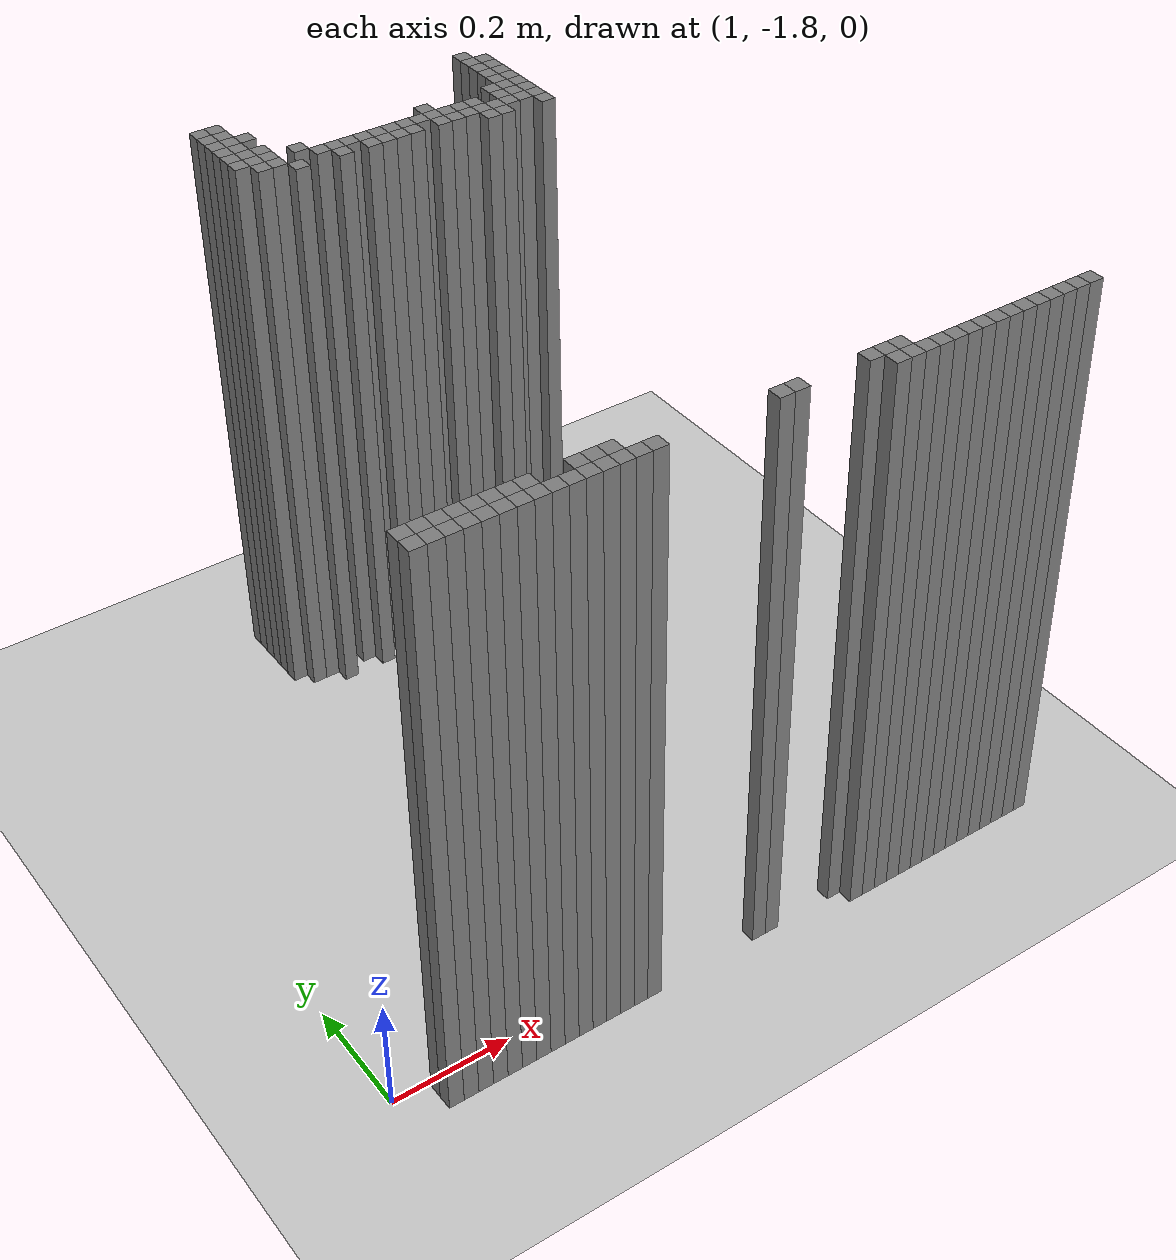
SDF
<sdf version="1.6">
 <world name="map_world">
  <include><uri>model://ground_plane</uri></include>
  <include><uri>model://sun</uri></include>
  <model name="obs_147_80">
   <static>true</static>
   <link name="link">
    <collision name="collision"><geometry><box><size>0.025 0.025 1.0</size></box></geometry></collision>
    <visual name="visual">
     <geometry><box><size>0.025 0.025 1.0</size></box></geometry>
     <material><ambient>0.5 0.5 0.5 1</ambient></material>
    </visual>
   </link>
   <pose>1.3487650000000002 -0.7690709999999998 0.5 0 0 0</pose>
  </model>
  <model name="obs_148_80">
   <static>true</static>
   <link name="link">
    <collision name="collision"><geometry><box><size>0.025 0.025 1.0</size></box></geometry></collision>
    <visual name="visual">
     <geometry><box><size>0.025 0.025 1.0</size></box></geometry>
     <material><ambient>0.5 0.5 0.5 1</ambient></material>
    </visual>
   </link>
   <pose>1.3737650000000001 -0.7690709999999998 0.5 0 0 0</pose>
  </model>
  <model name="obs_166_80">
   <static>true</static>
   <link name="link">
    <collision name="collision"><geometry><box><size>0.025 0.025 1.0</size></box></geometry></collision>
    <visual name="visual">
     <geometry><box><size>0.025 0.025 1.0</size></box></geometry>
     <material><ambient>0.5 0.5 0.5 1</ambient></material>
    </visual>
   </link>
   <pose>1.8237650000000003 -0.7690709999999998 0.5 0 0 0</pose>
  </model>
  <model name="obs_147_81">
   <static>true</static>
   <link name="link">
    <collision name="collision"><geometry><box><size>0.025 0.025 1.0</size></box></geometry></collision>
    <visual name="visual">
     <geometry><box><size>0.025 0.025 1.0</size></box></geometry>
     <material><ambient>0.5 0.5 0.5 1</ambient></material>
    </visual>
   </link>
   <pose>1.3487650000000002 -0.7940709999999997 0.5 0 0 0</pose>
  </model>
  <model name="obs_148_81">
   <static>true</static>
   <link name="link">
    <collision name="collision"><geometry><box><size>0.025 0.025 1.0</size></box></geometry></collision>
    <visual name="visual">
     <geometry><box><size>0.025 0.025 1.0</size></box></geometry>
     <material><ambient>0.5 0.5 0.5 1</ambient></material>
    </visual>
   </link>
   <pose>1.3737650000000001 -0.7940709999999997 0.5 0 0 0</pose>
  </model>
  <model name="obs_166_81">
   <static>true</static>
   <link name="link">
    <collision name="collision"><geometry><box><size>0.025 0.025 1.0</size></box></geometry></collision>
    <visual name="visual">
     <geometry><box><size>0.025 0.025 1.0</size></box></geometry>
     <material><ambient>0.5 0.5 0.5 1</ambient></material>
    </visual>
   </link>
   <pose>1.8237650000000003 -0.7940709999999997 0.5 0 0 0</pose>
  </model>
  <model name="obs_167_81">
   <static>true</static>
   <link name="link">
    <collision name="collision"><geometry><box><size>0.025 0.025 1.0</size></box></geometry></collision>
    <visual name="visual">
     <geometry><box><size>0.025 0.025 1.0</size></box></geometry>
     <material><ambient>0.5 0.5 0.5 1</ambient></material>
    </visual>
   </link>
   <pose>1.8487649999999998 -0.7940709999999997 0.5 0 0 0</pose>
  </model>
  <model name="obs_147_82">
   <static>true</static>
   <link name="link">
    <collision name="collision"><geometry><box><size>0.025 0.025 1.0</size></box></geometry></collision>
    <visual name="visual">
     <geometry><box><size>0.025 0.025 1.0</size></box></geometry>
     <material><ambient>0.5 0.5 0.5 1</ambient></material>
    </visual>
   </link>
   <pose>1.3487650000000002 -0.8190709999999999 0.5 0 0 0</pose>
  </model>
  <model name="obs_148_82">
   <static>true</static>
   <link name="link">
    <collision name="collision"><geometry><box><size>0.025 0.025 1.0</size></box></geometry></collision>
    <visual name="visual">
     <geometry><box><size>0.025 0.025 1.0</size></box></geometry>
     <material><ambient>0.5 0.5 0.5 1</ambient></material>
    </visual>
   </link>
   <pose>1.3737650000000001 -0.8190709999999999 0.5 0 0 0</pose>
  </model>
  <model name="obs_149_82">
   <static>true</static>
   <link name="link">
    <collision name="collision"><geometry><box><size>0.025 0.025 1.0</size></box></geometry></collision>
    <visual name="visual">
     <geometry><box><size>0.025 0.025 1.0</size></box></geometry>
     <material><ambient>0.5 0.5 0.5 1</ambient></material>
    </visual>
   </link>
   <pose>1.398765 -0.8190709999999999 0.5 0 0 0</pose>
  </model>
  <model name="obs_166_82">
   <static>true</static>
   <link name="link">
    <collision name="collision"><geometry><box><size>0.025 0.025 1.0</size></box></geometry></collision>
    <visual name="visual">
     <geometry><box><size>0.025 0.025 1.0</size></box></geometry>
     <material><ambient>0.5 0.5 0.5 1</ambient></material>
    </visual>
   </link>
   <pose>1.8237650000000003 -0.8190709999999999 0.5 0 0 0</pose>
  </model>
  <model name="obs_167_82">
   <static>true</static>
   <link name="link">
    <collision name="collision"><geometry><box><size>0.025 0.025 1.0</size></box></geometry></collision>
    <visual name="visual">
     <geometry><box><size>0.025 0.025 1.0</size></box></geometry>
     <material><ambient>0.5 0.5 0.5 1</ambient></material>
    </visual>
   </link>
   <pose>1.8487649999999998 -0.8190709999999999 0.5 0 0 0</pose>
  </model>
  <model name="obs_147_83">
   <static>true</static>
   <link name="link">
    <collision name="collision"><geometry><box><size>0.025 0.025 1.0</size></box></geometry></collision>
    <visual name="visual">
     <geometry><box><size>0.025 0.025 1.0</size></box></geometry>
     <material><ambient>0.5 0.5 0.5 1</ambient></material>
    </visual>
   </link>
   <pose>1.3487650000000002 -0.8440709999999998 0.5 0 0 0</pose>
  </model>
  <model name="obs_148_83">
   <static>true</static>
   <link name="link">
    <collision name="collision"><geometry><box><size>0.025 0.025 1.0</size></box></geometry></collision>
    <visual name="visual">
     <geometry><box><size>0.025 0.025 1.0</size></box></geometry>
     <material><ambient>0.5 0.5 0.5 1</ambient></material>
    </visual>
   </link>
   <pose>1.3737650000000001 -0.8440709999999998 0.5 0 0 0</pose>
  </model>
  <model name="obs_166_83">
   <static>true</static>
   <link name="link">
    <collision name="collision"><geometry><box><size>0.025 0.025 1.0</size></box></geometry></collision>
    <visual name="visual">
     <geometry><box><size>0.025 0.025 1.0</size></box></geometry>
     <material><ambient>0.5 0.5 0.5 1</ambient></material>
    </visual>
   </link>
   <pose>1.8237650000000003 -0.8440709999999998 0.5 0 0 0</pose>
  </model>
  <model name="obs_167_83">
   <static>true</static>
   <link name="link">
    <collision name="collision"><geometry><box><size>0.025 0.025 1.0</size></box></geometry></collision>
    <visual name="visual">
     <geometry><box><size>0.025 0.025 1.0</size></box></geometry>
     <material><ambient>0.5 0.5 0.5 1</ambient></material>
    </visual>
   </link>
   <pose>1.8487649999999998 -0.8440709999999998 0.5 0 0 0</pose>
  </model>
  <model name="obs_147_84">
   <static>true</static>
   <link name="link">
    <collision name="collision"><geometry><box><size>0.025 0.025 1.0</size></box></geometry></collision>
    <visual name="visual">
     <geometry><box><size>0.025 0.025 1.0</size></box></geometry>
     <material><ambient>0.5 0.5 0.5 1</ambient></material>
    </visual>
   </link>
   <pose>1.3487650000000002 -0.8690709999999999 0.5 0 0 0</pose>
  </model>
  <model name="obs_148_84">
   <static>true</static>
   <link name="link">
    <collision name="collision"><geometry><box><size>0.025 0.025 1.0</size></box></geometry></collision>
    <visual name="visual">
     <geometry><box><size>0.025 0.025 1.0</size></box></geometry>
     <material><ambient>0.5 0.5 0.5 1</ambient></material>
    </visual>
   </link>
   <pose>1.3737650000000001 -0.8690709999999999 0.5 0 0 0</pose>
  </model>
  <model name="obs_149_84">
   <static>true</static>
   <link name="link">
    <collision name="collision"><geometry><box><size>0.025 0.025 1.0</size></box></geometry></collision>
    <visual name="visual">
     <geometry><box><size>0.025 0.025 1.0</size></box></geometry>
     <material><ambient>0.5 0.5 0.5 1</ambient></material>
    </visual>
   </link>
   <pose>1.398765 -0.8690709999999999 0.5 0 0 0</pose>
  </model>
  <model name="obs_166_84">
   <static>true</static>
   <link name="link">
    <collision name="collision"><geometry><box><size>0.025 0.025 1.0</size></box></geometry></collision>
    <visual name="visual">
     <geometry><box><size>0.025 0.025 1.0</size></box></geometry>
     <material><ambient>0.5 0.5 0.5 1</ambient></material>
    </visual>
   </link>
   <pose>1.8237650000000003 -0.8690709999999999 0.5 0 0 0</pose>
  </model>
  <model name="obs_167_84">
   <static>true</static>
   <link name="link">
    <collision name="collision"><geometry><box><size>0.025 0.025 1.0</size></box></geometry></collision>
    <visual name="visual">
     <geometry><box><size>0.025 0.025 1.0</size></box></geometry>
     <material><ambient>0.5 0.5 0.5 1</ambient></material>
    </visual>
   </link>
   <pose>1.8487649999999998 -0.8690709999999999 0.5 0 0 0</pose>
  </model>
  <model name="obs_147_85">
   <static>true</static>
   <link name="link">
    <collision name="collision"><geometry><box><size>0.025 0.025 1.0</size></box></geometry></collision>
    <visual name="visual">
     <geometry><box><size>0.025 0.025 1.0</size></box></geometry>
     <material><ambient>0.5 0.5 0.5 1</ambient></material>
    </visual>
   </link>
   <pose>1.3487650000000002 -0.8940709999999998 0.5 0 0 0</pose>
  </model>
  <model name="obs_148_85">
   <static>true</static>
   <link name="link">
    <collision name="collision"><geometry><box><size>0.025 0.025 1.0</size></box></geometry></collision>
    <visual name="visual">
     <geometry><box><size>0.025 0.025 1.0</size></box></geometry>
     <material><ambient>0.5 0.5 0.5 1</ambient></material>
    </visual>
   </link>
   <pose>1.3737650000000001 -0.8940709999999998 0.5 0 0 0</pose>
  </model>
  <model name="obs_149_85">
   <static>true</static>
   <link name="link">
    <collision name="collision"><geometry><box><size>0.025 0.025 1.0</size></box></geometry></collision>
    <visual name="visual">
     <geometry><box><size>0.025 0.025 1.0</size></box></geometry>
     <material><ambient>0.5 0.5 0.5 1</ambient></material>
    </visual>
   </link>
   <pose>1.398765 -0.8940709999999998 0.5 0 0 0</pose>
  </model>
  <model name="obs_151_85">
   <static>true</static>
   <link name="link">
    <collision name="collision"><geometry><box><size>0.025 0.025 1.0</size></box></geometry></collision>
    <visual name="visual">
     <geometry><box><size>0.025 0.025 1.0</size></box></geometry>
     <material><ambient>0.5 0.5 0.5 1</ambient></material>
    </visual>
   </link>
   <pose>1.4487650000000003 -0.8940709999999998 0.5 0 0 0</pose>
  </model>
  <model name="obs_160_85">
   <static>true</static>
   <link name="link">
    <collision name="collision"><geometry><box><size>0.025 0.025 1.0</size></box></geometry></collision>
    <visual name="visual">
     <geometry><box><size>0.025 0.025 1.0</size></box></geometry>
     <material><ambient>0.5 0.5 0.5 1</ambient></material>
    </visual>
   </link>
   <pose>1.673765 -0.8940709999999998 0.5 0 0 0</pose>
  </model>
  <model name="obs_165_85">
   <static>true</static>
   <link name="link">
    <collision name="collision"><geometry><box><size>0.025 0.025 1.0</size></box></geometry></collision>
    <visual name="visual">
     <geometry><box><size>0.025 0.025 1.0</size></box></geometry>
     <material><ambient>0.5 0.5 0.5 1</ambient></material>
    </visual>
   </link>
   <pose>1.798765 -0.8940709999999998 0.5 0 0 0</pose>
  </model>
  <model name="obs_166_85">
   <static>true</static>
   <link name="link">
    <collision name="collision"><geometry><box><size>0.025 0.025 1.0</size></box></geometry></collision>
    <visual name="visual">
     <geometry><box><size>0.025 0.025 1.0</size></box></geometry>
     <material><ambient>0.5 0.5 0.5 1</ambient></material>
    </visual>
   </link>
   <pose>1.8237650000000003 -0.8940709999999998 0.5 0 0 0</pose>
  </model>
  <model name="obs_167_85">
   <static>true</static>
   <link name="link">
    <collision name="collision"><geometry><box><size>0.025 0.025 1.0</size></box></geometry></collision>
    <visual name="visual">
     <geometry><box><size>0.025 0.025 1.0</size></box></geometry>
     <material><ambient>0.5 0.5 0.5 1</ambient></material>
    </visual>
   </link>
   <pose>1.8487649999999998 -0.8940709999999998 0.5 0 0 0</pose>
  </model>
  <model name="obs_148_86">
   <static>true</static>
   <link name="link">
    <collision name="collision"><geometry><box><size>0.025 0.025 1.0</size></box></geometry></collision>
    <visual name="visual">
     <geometry><box><size>0.025 0.025 1.0</size></box></geometry>
     <material><ambient>0.5 0.5 0.5 1</ambient></material>
    </visual>
   </link>
   <pose>1.3737650000000001 -0.919071 0.5 0 0 0</pose>
  </model>
  <model name="obs_149_86">
   <static>true</static>
   <link name="link">
    <collision name="collision"><geometry><box><size>0.025 0.025 1.0</size></box></geometry></collision>
    <visual name="visual">
     <geometry><box><size>0.025 0.025 1.0</size></box></geometry>
     <material><ambient>0.5 0.5 0.5 1</ambient></material>
    </visual>
   </link>
   <pose>1.398765 -0.919071 0.5 0 0 0</pose>
  </model>
  <model name="obs_152_86">
   <static>true</static>
   <link name="link">
    <collision name="collision"><geometry><box><size>0.025 0.025 1.0</size></box></geometry></collision>
    <visual name="visual">
     <geometry><box><size>0.025 0.025 1.0</size></box></geometry>
     <material><ambient>0.5 0.5 0.5 1</ambient></material>
    </visual>
   </link>
   <pose>1.4737650000000002 -0.919071 0.5 0 0 0</pose>
  </model>
  <model name="obs_153_86">
   <static>true</static>
   <link name="link">
    <collision name="collision"><geometry><box><size>0.025 0.025 1.0</size></box></geometry></collision>
    <visual name="visual">
     <geometry><box><size>0.025 0.025 1.0</size></box></geometry>
     <material><ambient>0.5 0.5 0.5 1</ambient></material>
    </visual>
   </link>
   <pose>1.4987650000000001 -0.919071 0.5 0 0 0</pose>
  </model>
  <model name="obs_154_86">
   <static>true</static>
   <link name="link">
    <collision name="collision"><geometry><box><size>0.025 0.025 1.0</size></box></geometry></collision>
    <visual name="visual">
     <geometry><box><size>0.025 0.025 1.0</size></box></geometry>
     <material><ambient>0.5 0.5 0.5 1</ambient></material>
    </visual>
   </link>
   <pose>1.523765 -0.919071 0.5 0 0 0</pose>
  </model>
  <model name="obs_155_86">
   <static>true</static>
   <link name="link">
    <collision name="collision"><geometry><box><size>0.025 0.025 1.0</size></box></geometry></collision>
    <visual name="visual">
     <geometry><box><size>0.025 0.025 1.0</size></box></geometry>
     <material><ambient>0.5 0.5 0.5 1</ambient></material>
    </visual>
   </link>
   <pose>1.548765 -0.919071 0.5 0 0 0</pose>
  </model>
  <model name="obs_156_86">
   <static>true</static>
   <link name="link">
    <collision name="collision"><geometry><box><size>0.025 0.025 1.0</size></box></geometry></collision>
    <visual name="visual">
     <geometry><box><size>0.025 0.025 1.0</size></box></geometry>
     <material><ambient>0.5 0.5 0.5 1</ambient></material>
    </visual>
   </link>
   <pose>1.5737650000000003 -0.919071 0.5 0 0 0</pose>
  </model>
  <model name="obs_157_86">
   <static>true</static>
   <link name="link">
    <collision name="collision"><geometry><box><size>0.025 0.025 1.0</size></box></geometry></collision>
    <visual name="visual">
     <geometry><box><size>0.025 0.025 1.0</size></box></geometry>
     <material><ambient>0.5 0.5 0.5 1</ambient></material>
    </visual>
   </link>
   <pose>1.5987650000000002 -0.919071 0.5 0 0 0</pose>
  </model>
  <model name="obs_158_86">
   <static>true</static>
   <link name="link">
    <collision name="collision"><geometry><box><size>0.025 0.025 1.0</size></box></geometry></collision>
    <visual name="visual">
     <geometry><box><size>0.025 0.025 1.0</size></box></geometry>
     <material><ambient>0.5 0.5 0.5 1</ambient></material>
    </visual>
   </link>
   <pose>1.6237650000000001 -0.919071 0.5 0 0 0</pose>
  </model>
  <model name="obs_159_86">
   <static>true</static>
   <link name="link">
    <collision name="collision"><geometry><box><size>0.025 0.025 1.0</size></box></geometry></collision>
    <visual name="visual">
     <geometry><box><size>0.025 0.025 1.0</size></box></geometry>
     <material><ambient>0.5 0.5 0.5 1</ambient></material>
    </visual>
   </link>
   <pose>1.648765 -0.919071 0.5 0 0 0</pose>
  </model>
  <model name="obs_160_86">
   <static>true</static>
   <link name="link">
    <collision name="collision"><geometry><box><size>0.025 0.025 1.0</size></box></geometry></collision>
    <visual name="visual">
     <geometry><box><size>0.025 0.025 1.0</size></box></geometry>
     <material><ambient>0.5 0.5 0.5 1</ambient></material>
    </visual>
   </link>
   <pose>1.673765 -0.919071 0.5 0 0 0</pose>
  </model>
  <model name="obs_161_86">
   <static>true</static>
   <link name="link">
    <collision name="collision"><geometry><box><size>0.025 0.025 1.0</size></box></geometry></collision>
    <visual name="visual">
     <geometry><box><size>0.025 0.025 1.0</size></box></geometry>
     <material><ambient>0.5 0.5 0.5 1</ambient></material>
    </visual>
   </link>
   <pose>1.6987650000000003 -0.919071 0.5 0 0 0</pose>
  </model>
  <model name="obs_162_86">
   <static>true</static>
   <link name="link">
    <collision name="collision"><geometry><box><size>0.025 0.025 1.0</size></box></geometry></collision>
    <visual name="visual">
     <geometry><box><size>0.025 0.025 1.0</size></box></geometry>
     <material><ambient>0.5 0.5 0.5 1</ambient></material>
    </visual>
   </link>
   <pose>1.7237649999999998 -0.919071 0.5 0 0 0</pose>
  </model>
  <model name="obs_163_86">
   <static>true</static>
   <link name="link">
    <collision name="collision"><geometry><box><size>0.025 0.025 1.0</size></box></geometry></collision>
    <visual name="visual">
     <geometry><box><size>0.025 0.025 1.0</size></box></geometry>
     <material><ambient>0.5 0.5 0.5 1</ambient></material>
    </visual>
   </link>
   <pose>1.7487650000000001 -0.919071 0.5 0 0 0</pose>
  </model>
  <model name="obs_165_86">
   <static>true</static>
   <link name="link">
    <collision name="collision"><geometry><box><size>0.025 0.025 1.0</size></box></geometry></collision>
    <visual name="visual">
     <geometry><box><size>0.025 0.025 1.0</size></box></geometry>
     <material><ambient>0.5 0.5 0.5 1</ambient></material>
    </visual>
   </link>
   <pose>1.798765 -0.919071 0.5 0 0 0</pose>
  </model>
  <model name="obs_166_86">
   <static>true</static>
   <link name="link">
    <collision name="collision"><geometry><box><size>0.025 0.025 1.0</size></box></geometry></collision>
    <visual name="visual">
     <geometry><box><size>0.025 0.025 1.0</size></box></geometry>
     <material><ambient>0.5 0.5 0.5 1</ambient></material>
    </visual>
   </link>
   <pose>1.8237650000000003 -0.919071 0.5 0 0 0</pose>
  </model>
  <model name="obs_167_86">
   <static>true</static>
   <link name="link">
    <collision name="collision"><geometry><box><size>0.025 0.025 1.0</size></box></geometry></collision>
    <visual name="visual">
     <geometry><box><size>0.025 0.025 1.0</size></box></geometry>
     <material><ambient>0.5 0.5 0.5 1</ambient></material>
    </visual>
   </link>
   <pose>1.8487649999999998 -0.919071 0.5 0 0 0</pose>
  </model>
  <model name="obs_150_87">
   <static>true</static>
   <link name="link">
    <collision name="collision"><geometry><box><size>0.025 0.025 1.0</size></box></geometry></collision>
    <visual name="visual">
     <geometry><box><size>0.025 0.025 1.0</size></box></geometry>
     <material><ambient>0.5 0.5 0.5 1</ambient></material>
    </visual>
   </link>
   <pose>1.423765 -0.9440709999999999 0.5 0 0 0</pose>
  </model>
  <model name="obs_153_87">
   <static>true</static>
   <link name="link">
    <collision name="collision"><geometry><box><size>0.025 0.025 1.0</size></box></geometry></collision>
    <visual name="visual">
     <geometry><box><size>0.025 0.025 1.0</size></box></geometry>
     <material><ambient>0.5 0.5 0.5 1</ambient></material>
    </visual>
   </link>
   <pose>1.4987650000000001 -0.9440709999999999 0.5 0 0 0</pose>
  </model>
  <model name="obs_155_87">
   <static>true</static>
   <link name="link">
    <collision name="collision"><geometry><box><size>0.025 0.025 1.0</size></box></geometry></collision>
    <visual name="visual">
     <geometry><box><size>0.025 0.025 1.0</size></box></geometry>
     <material><ambient>0.5 0.5 0.5 1</ambient></material>
    </visual>
   </link>
   <pose>1.548765 -0.9440709999999999 0.5 0 0 0</pose>
  </model>
  <model name="obs_156_87">
   <static>true</static>
   <link name="link">
    <collision name="collision"><geometry><box><size>0.025 0.025 1.0</size></box></geometry></collision>
    <visual name="visual">
     <geometry><box><size>0.025 0.025 1.0</size></box></geometry>
     <material><ambient>0.5 0.5 0.5 1</ambient></material>
    </visual>
   </link>
   <pose>1.5737650000000003 -0.9440709999999999 0.5 0 0 0</pose>
  </model>
  <model name="obs_157_87">
   <static>true</static>
   <link name="link">
    <collision name="collision"><geometry><box><size>0.025 0.025 1.0</size></box></geometry></collision>
    <visual name="visual">
     <geometry><box><size>0.025 0.025 1.0</size></box></geometry>
     <material><ambient>0.5 0.5 0.5 1</ambient></material>
    </visual>
   </link>
   <pose>1.5987650000000002 -0.9440709999999999 0.5 0 0 0</pose>
  </model>
  <model name="obs_158_87">
   <static>true</static>
   <link name="link">
    <collision name="collision"><geometry><box><size>0.025 0.025 1.0</size></box></geometry></collision>
    <visual name="visual">
     <geometry><box><size>0.025 0.025 1.0</size></box></geometry>
     <material><ambient>0.5 0.5 0.5 1</ambient></material>
    </visual>
   </link>
   <pose>1.6237650000000001 -0.9440709999999999 0.5 0 0 0</pose>
  </model>
  <model name="obs_160_87">
   <static>true</static>
   <link name="link">
    <collision name="collision"><geometry><box><size>0.025 0.025 1.0</size></box></geometry></collision>
    <visual name="visual">
     <geometry><box><size>0.025 0.025 1.0</size></box></geometry>
     <material><ambient>0.5 0.5 0.5 1</ambient></material>
    </visual>
   </link>
   <pose>1.673765 -0.9440709999999999 0.5 0 0 0</pose>
  </model>
  <model name="obs_161_87">
   <static>true</static>
   <link name="link">
    <collision name="collision"><geometry><box><size>0.025 0.025 1.0</size></box></geometry></collision>
    <visual name="visual">
     <geometry><box><size>0.025 0.025 1.0</size></box></geometry>
     <material><ambient>0.5 0.5 0.5 1</ambient></material>
    </visual>
   </link>
   <pose>1.6987650000000003 -0.9440709999999999 0.5 0 0 0</pose>
  </model>
  <model name="obs_162_87">
   <static>true</static>
   <link name="link">
    <collision name="collision"><geometry><box><size>0.025 0.025 1.0</size></box></geometry></collision>
    <visual name="visual">
     <geometry><box><size>0.025 0.025 1.0</size></box></geometry>
     <material><ambient>0.5 0.5 0.5 1</ambient></material>
    </visual>
   </link>
   <pose>1.7237649999999998 -0.9440709999999999 0.5 0 0 0</pose>
  </model>
  <model name="obs_163_87">
   <static>true</static>
   <link name="link">
    <collision name="collision"><geometry><box><size>0.025 0.025 1.0</size></box></geometry></collision>
    <visual name="visual">
     <geometry><box><size>0.025 0.025 1.0</size></box></geometry>
     <material><ambient>0.5 0.5 0.5 1</ambient></material>
    </visual>
   </link>
   <pose>1.7487650000000001 -0.9440709999999999 0.5 0 0 0</pose>
  </model>
  <model name="obs_164_87">
   <static>true</static>
   <link name="link">
    <collision name="collision"><geometry><box><size>0.025 0.025 1.0</size></box></geometry></collision>
    <visual name="visual">
     <geometry><box><size>0.025 0.025 1.0</size></box></geometry>
     <material><ambient>0.5 0.5 0.5 1</ambient></material>
    </visual>
   </link>
   <pose>1.7737650000000005 -0.9440709999999999 0.5 0 0 0</pose>
  </model>
  <model name="obs_165_87">
   <static>true</static>
   <link name="link">
    <collision name="collision"><geometry><box><size>0.025 0.025 1.0</size></box></geometry></collision>
    <visual name="visual">
     <geometry><box><size>0.025 0.025 1.0</size></box></geometry>
     <material><ambient>0.5 0.5 0.5 1</ambient></material>
    </visual>
   </link>
   <pose>1.798765 -0.9440709999999999 0.5 0 0 0</pose>
  </model>
  <model name="obs_166_87">
   <static>true</static>
   <link name="link">
    <collision name="collision"><geometry><box><size>0.025 0.025 1.0</size></box></geometry></collision>
    <visual name="visual">
     <geometry><box><size>0.025 0.025 1.0</size></box></geometry>
     <material><ambient>0.5 0.5 0.5 1</ambient></material>
    </visual>
   </link>
   <pose>1.8237650000000003 -0.9440709999999999 0.5 0 0 0</pose>
  </model>
  <model name="obs_167_87">
   <static>true</static>
   <link name="link">
    <collision name="collision"><geometry><box><size>0.025 0.025 1.0</size></box></geometry></collision>
    <visual name="visual">
     <geometry><box><size>0.025 0.025 1.0</size></box></geometry>
     <material><ambient>0.5 0.5 0.5 1</ambient></material>
    </visual>
   </link>
   <pose>1.8487649999999998 -0.9440709999999999 0.5 0 0 0</pose>
  </model>
  <model name="obs_163_88">
   <static>true</static>
   <link name="link">
    <collision name="collision"><geometry><box><size>0.025 0.025 1.0</size></box></geometry></collision>
    <visual name="visual">
     <geometry><box><size>0.025 0.025 1.0</size></box></geometry>
     <material><ambient>0.5 0.5 0.5 1</ambient></material>
    </visual>
   </link>
   <pose>1.7487650000000001 -0.9690709999999998 0.5 0 0 0</pose>
  </model>
  <model name="obs_164_88">
   <static>true</static>
   <link name="link">
    <collision name="collision"><geometry><box><size>0.025 0.025 1.0</size></box></geometry></collision>
    <visual name="visual">
     <geometry><box><size>0.025 0.025 1.0</size></box></geometry>
     <material><ambient>0.5 0.5 0.5 1</ambient></material>
    </visual>
   </link>
   <pose>1.7737650000000005 -0.9690709999999998 0.5 0 0 0</pose>
  </model>
  <model name="obs_167_88">
   <static>true</static>
   <link name="link">
    <collision name="collision"><geometry><box><size>0.025 0.025 1.0</size></box></geometry></collision>
    <visual name="visual">
     <geometry><box><size>0.025 0.025 1.0</size></box></geometry>
     <material><ambient>0.5 0.5 0.5 1</ambient></material>
    </visual>
   </link>
   <pose>1.8487649999999998 -0.9690709999999998 0.5 0 0 0</pose>
  </model>
  <model name="obs_136_122">
   <static>true</static>
   <link name="link">
    <collision name="collision"><geometry><box><size>0.025 0.025 1.0</size></box></geometry></collision>
    <visual name="visual">
     <geometry><box><size>0.025 0.025 1.0</size></box></geometry>
     <material><ambient>0.5 0.5 0.5 1</ambient></material>
    </visual>
   </link>
   <pose>1.0737650000000003 -1.8190709999999999 0.5 0 0 0</pose>
  </model>
  <model name="obs_137_122">
   <static>true</static>
   <link name="link">
    <collision name="collision"><geometry><box><size>0.025 0.025 1.0</size></box></geometry></collision>
    <visual name="visual">
     <geometry><box><size>0.025 0.025 1.0</size></box></geometry>
     <material><ambient>0.5 0.5 0.5 1</ambient></material>
    </visual>
   </link>
   <pose>1.0987650000000002 -1.8190709999999999 0.5 0 0 0</pose>
  </model>
  <model name="obs_138_122">
   <static>true</static>
   <link name="link">
    <collision name="collision"><geometry><box><size>0.025 0.025 1.0</size></box></geometry></collision>
    <visual name="visual">
     <geometry><box><size>0.025 0.025 1.0</size></box></geometry>
     <material><ambient>0.5 0.5 0.5 1</ambient></material>
    </visual>
   </link>
   <pose>1.1237650000000001 -1.8190709999999999 0.5 0 0 0</pose>
  </model>
  <model name="obs_139_122">
   <static>true</static>
   <link name="link">
    <collision name="collision"><geometry><box><size>0.025 0.025 1.0</size></box></geometry></collision>
    <visual name="visual">
     <geometry><box><size>0.025 0.025 1.0</size></box></geometry>
     <material><ambient>0.5 0.5 0.5 1</ambient></material>
    </visual>
   </link>
   <pose>1.148765 -1.8190709999999999 0.5 0 0 0</pose>
  </model>
  <model name="obs_140_122">
   <static>true</static>
   <link name="link">
    <collision name="collision"><geometry><box><size>0.025 0.025 1.0</size></box></geometry></collision>
    <visual name="visual">
     <geometry><box><size>0.025 0.025 1.0</size></box></geometry>
     <material><ambient>0.5 0.5 0.5 1</ambient></material>
    </visual>
   </link>
   <pose>1.173765 -1.8190709999999999 0.5 0 0 0</pose>
  </model>
  <model name="obs_141_122">
   <static>true</static>
   <link name="link">
    <collision name="collision"><geometry><box><size>0.025 0.025 1.0</size></box></geometry></collision>
    <visual name="visual">
     <geometry><box><size>0.025 0.025 1.0</size></box></geometry>
     <material><ambient>0.5 0.5 0.5 1</ambient></material>
    </visual>
   </link>
   <pose>1.1987650000000003 -1.8190709999999999 0.5 0 0 0</pose>
  </model>
  <model name="obs_142_122">
   <static>true</static>
   <link name="link">
    <collision name="collision"><geometry><box><size>0.025 0.025 1.0</size></box></geometry></collision>
    <visual name="visual">
     <geometry><box><size>0.025 0.025 1.0</size></box></geometry>
     <material><ambient>0.5 0.5 0.5 1</ambient></material>
    </visual>
   </link>
   <pose>1.2237650000000002 -1.8190709999999999 0.5 0 0 0</pose>
  </model>
  <model name="obs_143_122">
   <static>true</static>
   <link name="link">
    <collision name="collision"><geometry><box><size>0.025 0.025 1.0</size></box></geometry></collision>
    <visual name="visual">
     <geometry><box><size>0.025 0.025 1.0</size></box></geometry>
     <material><ambient>0.5 0.5 0.5 1</ambient></material>
    </visual>
   </link>
   <pose>1.2487650000000001 -1.8190709999999999 0.5 0 0 0</pose>
  </model>
  <model name="obs_146_122">
   <static>true</static>
   <link name="link">
    <collision name="collision"><geometry><box><size>0.025 0.025 1.0</size></box></geometry></collision>
    <visual name="visual">
     <geometry><box><size>0.025 0.025 1.0</size></box></geometry>
     <material><ambient>0.5 0.5 0.5 1</ambient></material>
    </visual>
   </link>
   <pose>1.3237650000000003 -1.8190709999999999 0.5 0 0 0</pose>
  </model>
  <model name="obs_147_122">
   <static>true</static>
   <link name="link">
    <collision name="collision"><geometry><box><size>0.025 0.025 1.0</size></box></geometry></collision>
    <visual name="visual">
     <geometry><box><size>0.025 0.025 1.0</size></box></geometry>
     <material><ambient>0.5 0.5 0.5 1</ambient></material>
    </visual>
   </link>
   <pose>1.3487650000000002 -1.8190709999999999 0.5 0 0 0</pose>
  </model>
  <model name="obs_148_122">
   <static>true</static>
   <link name="link">
    <collision name="collision"><geometry><box><size>0.025 0.025 1.0</size></box></geometry></collision>
    <visual name="visual">
     <geometry><box><size>0.025 0.025 1.0</size></box></geometry>
     <material><ambient>0.5 0.5 0.5 1</ambient></material>
    </visual>
   </link>
   <pose>1.3737650000000001 -1.8190709999999999 0.5 0 0 0</pose>
  </model>
  <model name="obs_136_123">
   <static>true</static>
   <link name="link">
    <collision name="collision"><geometry><box><size>0.025 0.025 1.0</size></box></geometry></collision>
    <visual name="visual">
     <geometry><box><size>0.025 0.025 1.0</size></box></geometry>
     <material><ambient>0.5 0.5 0.5 1</ambient></material>
    </visual>
   </link>
   <pose>1.0737650000000003 -1.844071 0.5 0 0 0</pose>
  </model>
  <model name="obs_137_123">
   <static>true</static>
   <link name="link">
    <collision name="collision"><geometry><box><size>0.025 0.025 1.0</size></box></geometry></collision>
    <visual name="visual">
     <geometry><box><size>0.025 0.025 1.0</size></box></geometry>
     <material><ambient>0.5 0.5 0.5 1</ambient></material>
    </visual>
   </link>
   <pose>1.0987650000000002 -1.844071 0.5 0 0 0</pose>
  </model>
  <model name="obs_138_123">
   <static>true</static>
   <link name="link">
    <collision name="collision"><geometry><box><size>0.025 0.025 1.0</size></box></geometry></collision>
    <visual name="visual">
     <geometry><box><size>0.025 0.025 1.0</size></box></geometry>
     <material><ambient>0.5 0.5 0.5 1</ambient></material>
    </visual>
   </link>
   <pose>1.1237650000000001 -1.844071 0.5 0 0 0</pose>
  </model>
  <model name="obs_139_123">
   <static>true</static>
   <link name="link">
    <collision name="collision"><geometry><box><size>0.025 0.025 1.0</size></box></geometry></collision>
    <visual name="visual">
     <geometry><box><size>0.025 0.025 1.0</size></box></geometry>
     <material><ambient>0.5 0.5 0.5 1</ambient></material>
    </visual>
   </link>
   <pose>1.148765 -1.844071 0.5 0 0 0</pose>
  </model>
  <model name="obs_140_123">
   <static>true</static>
   <link name="link">
    <collision name="collision"><geometry><box><size>0.025 0.025 1.0</size></box></geometry></collision>
    <visual name="visual">
     <geometry><box><size>0.025 0.025 1.0</size></box></geometry>
     <material><ambient>0.5 0.5 0.5 1</ambient></material>
    </visual>
   </link>
   <pose>1.173765 -1.844071 0.5 0 0 0</pose>
  </model>
  <model name="obs_141_123">
   <static>true</static>
   <link name="link">
    <collision name="collision"><geometry><box><size>0.025 0.025 1.0</size></box></geometry></collision>
    <visual name="visual">
     <geometry><box><size>0.025 0.025 1.0</size></box></geometry>
     <material><ambient>0.5 0.5 0.5 1</ambient></material>
    </visual>
   </link>
   <pose>1.1987650000000003 -1.844071 0.5 0 0 0</pose>
  </model>
  <model name="obs_142_123">
   <static>true</static>
   <link name="link">
    <collision name="collision"><geometry><box><size>0.025 0.025 1.0</size></box></geometry></collision>
    <visual name="visual">
     <geometry><box><size>0.025 0.025 1.0</size></box></geometry>
     <material><ambient>0.5 0.5 0.5 1</ambient></material>
    </visual>
   </link>
   <pose>1.2237650000000002 -1.844071 0.5 0 0 0</pose>
  </model>
  <model name="obs_143_123">
   <static>true</static>
   <link name="link">
    <collision name="collision"><geometry><box><size>0.025 0.025 1.0</size></box></geometry></collision>
    <visual name="visual">
     <geometry><box><size>0.025 0.025 1.0</size></box></geometry>
     <material><ambient>0.5 0.5 0.5 1</ambient></material>
    </visual>
   </link>
   <pose>1.2487650000000001 -1.844071 0.5 0 0 0</pose>
  </model>
  <model name="obs_144_123">
   <static>true</static>
   <link name="link">
    <collision name="collision"><geometry><box><size>0.025 0.025 1.0</size></box></geometry></collision>
    <visual name="visual">
     <geometry><box><size>0.025 0.025 1.0</size></box></geometry>
     <material><ambient>0.5 0.5 0.5 1</ambient></material>
    </visual>
   </link>
   <pose>1.273765 -1.844071 0.5 0 0 0</pose>
  </model>
  <model name="obs_145_123">
   <static>true</static>
   <link name="link">
    <collision name="collision"><geometry><box><size>0.025 0.025 1.0</size></box></geometry></collision>
    <visual name="visual">
     <geometry><box><size>0.025 0.025 1.0</size></box></geometry>
     <material><ambient>0.5 0.5 0.5 1</ambient></material>
    </visual>
   </link>
   <pose>1.298765 -1.844071 0.5 0 0 0</pose>
  </model>
  <model name="obs_146_123">
   <static>true</static>
   <link name="link">
    <collision name="collision"><geometry><box><size>0.025 0.025 1.0</size></box></geometry></collision>
    <visual name="visual">
     <geometry><box><size>0.025 0.025 1.0</size></box></geometry>
     <material><ambient>0.5 0.5 0.5 1</ambient></material>
    </visual>
   </link>
   <pose>1.3237650000000003 -1.844071 0.5 0 0 0</pose>
  </model>
  <model name="obs_147_123">
   <static>true</static>
   <link name="link">
    <collision name="collision"><geometry><box><size>0.025 0.025 1.0</size></box></geometry></collision>
    <visual name="visual">
     <geometry><box><size>0.025 0.025 1.0</size></box></geometry>
     <material><ambient>0.5 0.5 0.5 1</ambient></material>
    </visual>
   </link>
   <pose>1.3487650000000002 -1.844071 0.5 0 0 0</pose>
  </model>
  <model name="obs_148_123">
   <static>true</static>
   <link name="link">
    <collision name="collision"><geometry><box><size>0.025 0.025 1.0</size></box></geometry></collision>
    <visual name="visual">
     <geometry><box><size>0.025 0.025 1.0</size></box></geometry>
     <material><ambient>0.5 0.5 0.5 1</ambient></material>
    </visual>
   </link>
   <pose>1.3737650000000001 -1.844071 0.5 0 0 0</pose>
  </model>
  <model name="obs_149_123">
   <static>true</static>
   <link name="link">
    <collision name="collision"><geometry><box><size>0.025 0.025 1.0</size></box></geometry></collision>
    <visual name="visual">
     <geometry><box><size>0.025 0.025 1.0</size></box></geometry>
     <material><ambient>0.5 0.5 0.5 1</ambient></material>
    </visual>
   </link>
   <pose>1.398765 -1.844071 0.5 0 0 0</pose>
  </model>
  <model name="obs_150_123">
   <static>true</static>
   <link name="link">
    <collision name="collision"><geometry><box><size>0.025 0.025 1.0</size></box></geometry></collision>
    <visual name="visual">
     <geometry><box><size>0.025 0.025 1.0</size></box></geometry>
     <material><ambient>0.5 0.5 0.5 1</ambient></material>
    </visual>
   </link>
   <pose>1.423765 -1.844071 0.5 0 0 0</pose>
  </model>
  <model name="obs_158_123">
   <static>true</static>
   <link name="link">
    <collision name="collision"><geometry><box><size>0.025 0.025 1.0</size></box></geometry></collision>
    <visual name="visual">
     <geometry><box><size>0.025 0.025 1.0</size></box></geometry>
     <material><ambient>0.5 0.5 0.5 1</ambient></material>
    </visual>
   </link>
   <pose>1.6237650000000001 -1.844071 0.5 0 0 0</pose>
  </model>
  <model name="obs_159_123">
   <static>true</static>
   <link name="link">
    <collision name="collision"><geometry><box><size>0.025 0.025 1.0</size></box></geometry></collision>
    <visual name="visual">
     <geometry><box><size>0.025 0.025 1.0</size></box></geometry>
     <material><ambient>0.5 0.5 0.5 1</ambient></material>
    </visual>
   </link>
   <pose>1.648765 -1.844071 0.5 0 0 0</pose>
  </model>
  <model name="obs_164_123">
   <static>true</static>
   <link name="link">
    <collision name="collision"><geometry><box><size>0.025 0.025 1.0</size></box></geometry></collision>
    <visual name="visual">
     <geometry><box><size>0.025 0.025 1.0</size></box></geometry>
     <material><ambient>0.5 0.5 0.5 1</ambient></material>
    </visual>
   </link>
   <pose>1.7737650000000005 -1.844071 0.5 0 0 0</pose>
  </model>
  <model name="obs_165_123">
   <static>true</static>
   <link name="link">
    <collision name="collision"><geometry><box><size>0.025 0.025 1.0</size></box></geometry></collision>
    <visual name="visual">
     <geometry><box><size>0.025 0.025 1.0</size></box></geometry>
     <material><ambient>0.5 0.5 0.5 1</ambient></material>
    </visual>
   </link>
   <pose>1.798765 -1.844071 0.5 0 0 0</pose>
  </model>
  <model name="obs_166_123">
   <static>true</static>
   <link name="link">
    <collision name="collision"><geometry><box><size>0.025 0.025 1.0</size></box></geometry></collision>
    <visual name="visual">
     <geometry><box><size>0.025 0.025 1.0</size></box></geometry>
     <material><ambient>0.5 0.5 0.5 1</ambient></material>
    </visual>
   </link>
   <pose>1.8237650000000003 -1.844071 0.5 0 0 0</pose>
  </model>
  <model name="obs_165_124">
   <static>true</static>
   <link name="link">
    <collision name="collision"><geometry><box><size>0.025 0.025 1.0</size></box></geometry></collision>
    <visual name="visual">
     <geometry><box><size>0.025 0.025 1.0</size></box></geometry>
     <material><ambient>0.5 0.5 0.5 1</ambient></material>
    </visual>
   </link>
   <pose>1.798765 -1.869071 0.5 0 0 0</pose>
  </model>
  <model name="obs_166_124">
   <static>true</static>
   <link name="link">
    <collision name="collision"><geometry><box><size>0.025 0.025 1.0</size></box></geometry></collision>
    <visual name="visual">
     <geometry><box><size>0.025 0.025 1.0</size></box></geometry>
     <material><ambient>0.5 0.5 0.5 1</ambient></material>
    </visual>
   </link>
   <pose>1.8237650000000003 -1.869071 0.5 0 0 0</pose>
  </model>
  <model name="obs_167_124">
   <static>true</static>
   <link name="link">
    <collision name="collision"><geometry><box><size>0.025 0.025 1.0</size></box></geometry></collision>
    <visual name="visual">
     <geometry><box><size>0.025 0.025 1.0</size></box></geometry>
     <material><ambient>0.5 0.5 0.5 1</ambient></material>
    </visual>
   </link>
   <pose>1.8487649999999998 -1.869071 0.5 0 0 0</pose>
  </model>
  <model name="obs_168_124">
   <static>true</static>
   <link name="link">
    <collision name="collision"><geometry><box><size>0.025 0.025 1.0</size></box></geometry></collision>
    <visual name="visual">
     <geometry><box><size>0.025 0.025 1.0</size></box></geometry>
     <material><ambient>0.5 0.5 0.5 1</ambient></material>
    </visual>
   </link>
   <pose>1.8737650000000001 -1.869071 0.5 0 0 0</pose>
  </model>
  <model name="obs_169_124">
   <static>true</static>
   <link name="link">
    <collision name="collision"><geometry><box><size>0.025 0.025 1.0</size></box></geometry></collision>
    <visual name="visual">
     <geometry><box><size>0.025 0.025 1.0</size></box></geometry>
     <material><ambient>0.5 0.5 0.5 1</ambient></material>
    </visual>
   </link>
   <pose>1.8987650000000005 -1.869071 0.5 0 0 0</pose>
  </model>
  <model name="obs_170_124">
   <static>true</static>
   <link name="link">
    <collision name="collision"><geometry><box><size>0.025 0.025 1.0</size></box></geometry></collision>
    <visual name="visual">
     <geometry><box><size>0.025 0.025 1.0</size></box></geometry>
     <material><ambient>0.5 0.5 0.5 1</ambient></material>
    </visual>
   </link>
   <pose>1.923765 -1.869071 0.5 0 0 0</pose>
  </model>
  <model name="obs_171_124">
   <static>true</static>
   <link name="link">
    <collision name="collision"><geometry><box><size>0.025 0.025 1.0</size></box></geometry></collision>
    <visual name="visual">
     <geometry><box><size>0.025 0.025 1.0</size></box></geometry>
     <material><ambient>0.5 0.5 0.5 1</ambient></material>
    </visual>
   </link>
   <pose>1.9487650000000003 -1.869071 0.5 0 0 0</pose>
  </model>
  <model name="obs_172_124">
   <static>true</static>
   <link name="link">
    <collision name="collision"><geometry><box><size>0.025 0.025 1.0</size></box></geometry></collision>
    <visual name="visual">
     <geometry><box><size>0.025 0.025 1.0</size></box></geometry>
     <material><ambient>0.5 0.5 0.5 1</ambient></material>
    </visual>
   </link>
   <pose>1.9737649999999998 -1.869071 0.5 0 0 0</pose>
  </model>
  <model name="obs_173_124">
   <static>true</static>
   <link name="link">
    <collision name="collision"><geometry><box><size>0.025 0.025 1.0</size></box></geometry></collision>
    <visual name="visual">
     <geometry><box><size>0.025 0.025 1.0</size></box></geometry>
     <material><ambient>0.5 0.5 0.5 1</ambient></material>
    </visual>
   </link>
   <pose>1.9987650000000001 -1.869071 0.5 0 0 0</pose>
  </model>
  <model name="obs_174_124">
   <static>true</static>
   <link name="link">
    <collision name="collision"><geometry><box><size>0.025 0.025 1.0</size></box></geometry></collision>
    <visual name="visual">
     <geometry><box><size>0.025 0.025 1.0</size></box></geometry>
     <material><ambient>0.5 0.5 0.5 1</ambient></material>
    </visual>
   </link>
   <pose>2.0237650000000005 -1.869071 0.5 0 0 0</pose>
  </model>
  <model name="obs_175_124">
   <static>true</static>
   <link name="link">
    <collision name="collision"><geometry><box><size>0.025 0.025 1.0</size></box></geometry></collision>
    <visual name="visual">
     <geometry><box><size>0.025 0.025 1.0</size></box></geometry>
     <material><ambient>0.5 0.5 0.5 1</ambient></material>
    </visual>
   </link>
   <pose>2.048765 -1.869071 0.5 0 0 0</pose>
  </model>
  <model name="obs_176_124">
   <static>true</static>
   <link name="link">
    <collision name="collision"><geometry><box><size>0.025 0.025 1.0</size></box></geometry></collision>
    <visual name="visual">
     <geometry><box><size>0.025 0.025 1.0</size></box></geometry>
     <material><ambient>0.5 0.5 0.5 1</ambient></material>
    </visual>
   </link>
   <pose>2.0737650000000003 -1.869071 0.5 0 0 0</pose>
  </model>
  <model name="obs_177_124">
   <static>true</static>
   <link name="link">
    <collision name="collision"><geometry><box><size>0.025 0.025 1.0</size></box></geometry></collision>
    <visual name="visual">
     <geometry><box><size>0.025 0.025 1.0</size></box></geometry>
     <material><ambient>0.5 0.5 0.5 1</ambient></material>
    </visual>
   </link>
   <pose>2.0987649999999998 -1.869071 0.5 0 0 0</pose>
  </model>
  <model name="obs_178_124">
   <static>true</static>
   <link name="link">
    <collision name="collision"><geometry><box><size>0.025 0.025 1.0</size></box></geometry></collision>
    <visual name="visual">
     <geometry><box><size>0.025 0.025 1.0</size></box></geometry>
     <material><ambient>0.5 0.5 0.5 1</ambient></material>
    </visual>
   </link>
   <pose>2.123765 -1.869071 0.5 0 0 0</pose>
  </model>
  <model name="obs_179_124">
   <static>true</static>
   <link name="link">
    <collision name="collision"><geometry><box><size>0.025 0.025 1.0</size></box></geometry></collision>
    <visual name="visual">
     <geometry><box><size>0.025 0.025 1.0</size></box></geometry>
     <material><ambient>0.5 0.5 0.5 1</ambient></material>
    </visual>
   </link>
   <pose>2.1487650000000005 -1.869071 0.5 0 0 0</pose>
  </model>
 </world>
</sdf>
